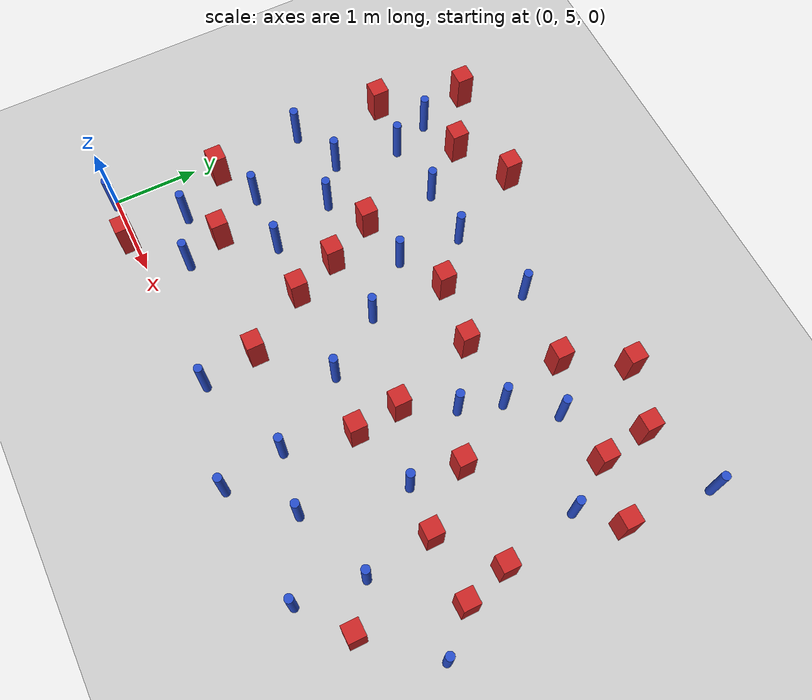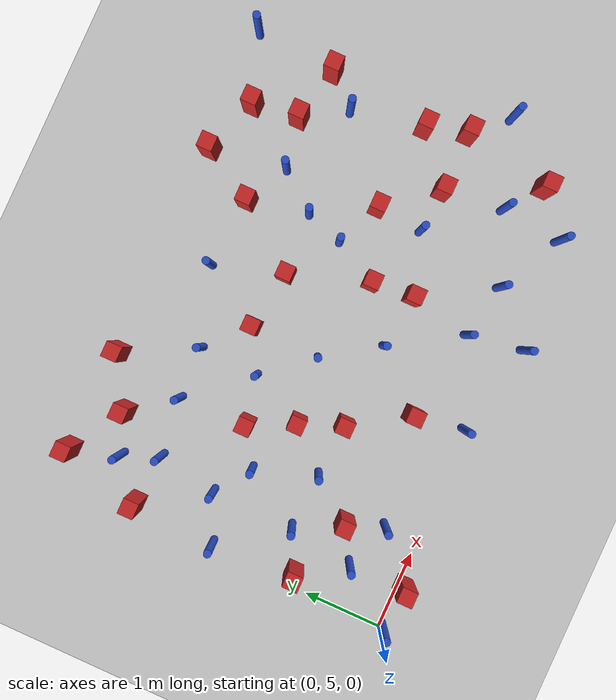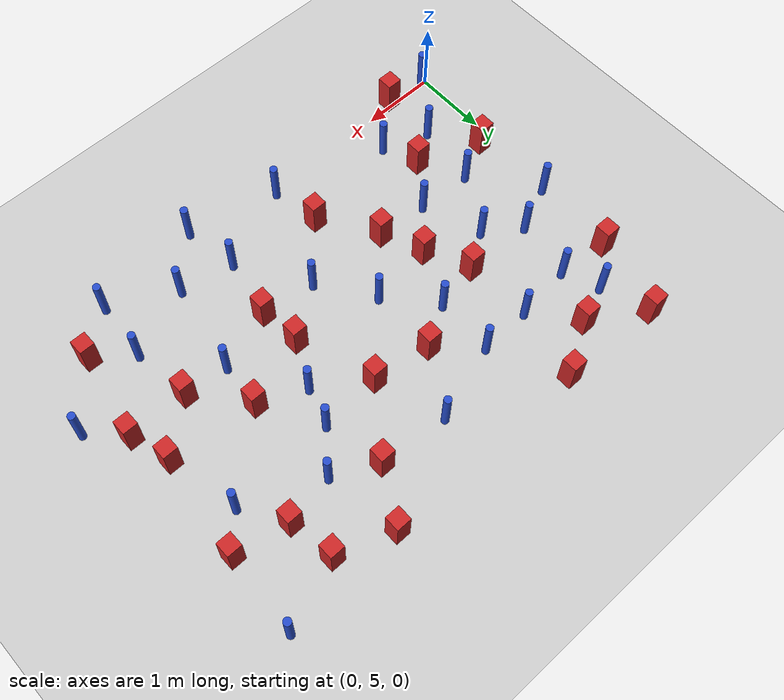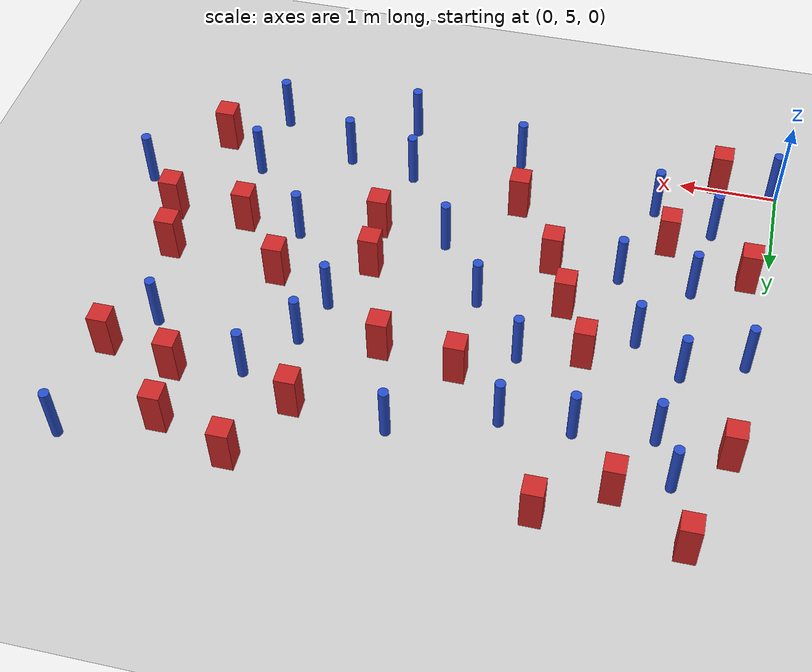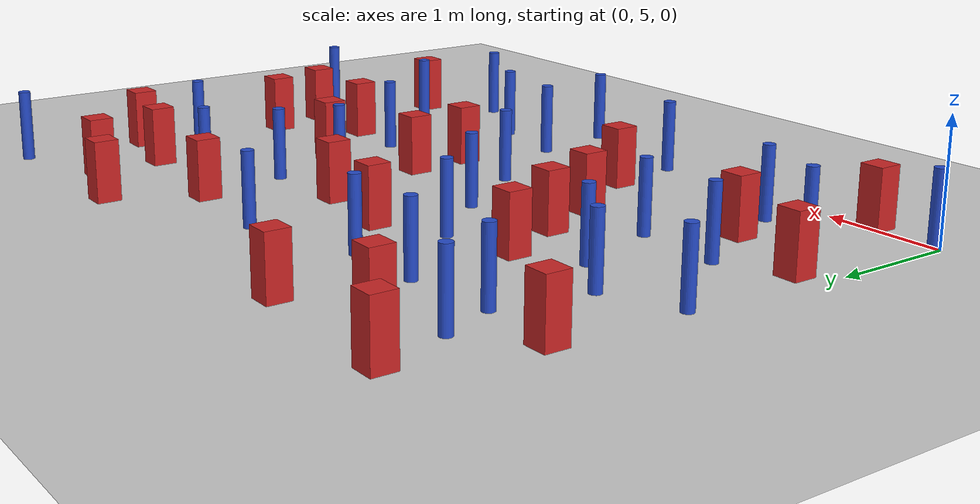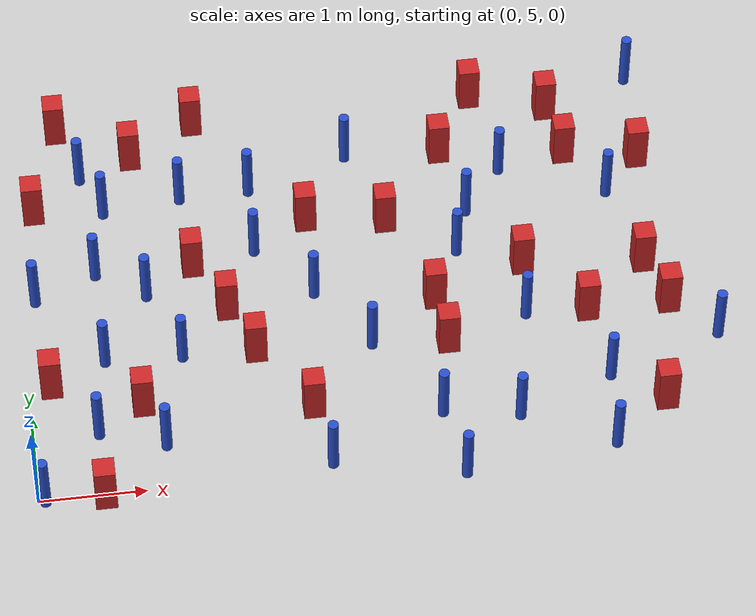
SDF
<sdf version="1.6">
 <world name="default">
  <model name="ground_plane">
   <static>1</static>
   <link name="link">
    <collision name="collision">
     <geometry><plane><normal>0 0 1</normal><size>100 100</size></plane></geometry>
     <surface><friction><ode><mu>100</mu><mu2>50</mu2></ode></friction></surface>
    </collision>
    <visual name="visual">
     <cast_shadows>0</cast_shadows>
     <geometry><plane><normal>0 0 1</normal><size>100 100</size></plane></geometry>
     <material>
      <ambient>1.0 1.0 1.0 1.0</ambient>
      <diffuse>0.8 0.8 0.8 1.0</diffuse>
      <specular>0.01 0.01 0.01 1.000000</specular>
     </material>
    </visual>
   </link>
  </model>
  <model name="square_post_obstacle0">
   <static>true</static>
   <pose>5.86539074183 5.41331573031 8.22691968438e-08 7.2212513382e-06 -7.54495500217e-07 2.29674213826e-05</pose>
   <link name="link">
    <pose>0 0 0.25 0 -0 0</pose>
    <inertial>
     <mass>100</mass>
     <inertia>
      <ixx>0.166667</ixx>
      <ixy>0</ixy>
      <ixz>0</ixz>
      <iyy>0.166667</iyy>
      <iyz>0</iyz>
      <izz>0.166667</izz>
     </inertia>
    </inertial>
    <collision name="collision"><geometry><box><size>.2 .2 .5</size></box></geometry></collision>
    <visual name="visual">
     <geometry><box><size>.2 .2 .5</size></box></geometry>
     <material>
      <script><name>Gazebo/Red</name><uri>file://media/materials/scripts/gazebo.material</uri></script>
     </material>
    </visual>
   </link>
  </model>
  <model name="square_post_obstacle1">
   <static>true</static>
   <pose>0.477158628215 9.43952176952 8.22691968438e-08 7.22125133819e-06 -7.54495500217e-07 2.29674213826e-05</pose>
   <link name="link">
    <pose>0 0 0.25 0 -0 0</pose>
    <inertial>
     <mass>100</mass>
     <inertia>
      <ixx>0.166667</ixx>
      <ixy>0</ixy>
      <ixz>0</ixz>
      <iyy>0.166667</iyy>
      <iyz>0</iyz>
      <izz>0.166667</izz>
     </inertia>
    </inertial>
    <collision name="collision"><geometry><box><size>.2 .2 .5</size></box></geometry></collision>
    <visual name="visual">
     <geometry><box><size>.2 .2 .5</size></box></geometry>
     <material>
      <script><name>Gazebo/Red</name><uri>file://media/materials/scripts/gazebo.material</uri></script>
     </material>
    </visual>
   </link>
  </model>
  <model name="square_post_obstacle16">
   <static>true</static>
   <pose>4.78652558701 7.19634134487 8.22691968438e-08 7.2212513382e-06 -7.54495500217e-07 2.29674213826e-05</pose>
   <link name="link">
    <pose>0 0 0.25 0 -0 0</pose>
    <inertial>
     <mass>100</mass>
     <inertia>
      <ixx>0.166667</ixx>
      <ixy>0</ixy>
      <ixz>0</ixz>
      <iyy>0.166667</iyy>
      <iyz>0</iyz>
      <izz>0.166667</izz>
     </inertia>
    </inertial>
    <collision name="collision"><geometry><box><size>.2 .2 .5</size></box></geometry></collision>
    <visual name="visual">
     <geometry><box><size>.2 .2 .5</size></box></geometry>
     <material>
      <script><name>Gazebo/Red</name><uri>file://media/materials/scripts/gazebo.material</uri></script>
     </material>
    </visual>
   </link>
  </model>
  <model name="square_post_obstacle19">
   <static>true</static>
   <pose>5.39842793259 8.55268821389 8.22691968438e-08 7.22125133819e-06 -7.54495500217e-07 2.29674213826e-05</pose>
   <link name="link">
    <pose>0 0 0.25 0 -0 0</pose>
    <inertial>
     <mass>100</mass>
     <inertia>
      <ixx>0.166667</ixx>
      <ixy>0</ixy>
      <ixz>0</ixz>
      <iyy>0.166667</iyy>
      <iyz>0</iyz>
      <izz>0.166667</izz>
     </inertia>
    </inertial>
    <collision name="collision"><geometry><box><size>.2 .2 .5</size></box></geometry></collision>
    <visual name="visual">
     <geometry><box><size>.2 .2 .5</size></box></geometry>
     <material>
      <script><name>Gazebo/Red</name><uri>file://media/materials/scripts/gazebo.material</uri></script>
     </material>
    </visual>
   </link>
  </model>
  <model name="square_post_obstacle20">
   <static>true</static>
   <pose>4.18817228938 8.71090653586 8.22691968438e-08 7.22125133819e-06 -7.54495500217e-07 2.29674213826e-05</pose>
   <link name="link">
    <pose>0 0 0.25 0 -0 0</pose>
    <inertial>
     <mass>100</mass>
     <inertia>
      <ixx>0.166667</ixx>
      <ixy>0</ixy>
      <ixz>0</ixz>
      <iyy>0.166667</iyy>
      <iyz>0</iyz>
      <izz>0.166667</izz>
     </inertia>
    </inertial>
    <collision name="collision"><geometry><box><size>.2 .2 .5</size></box></geometry></collision>
    <visual name="visual">
     <geometry><box><size>.2 .2 .5</size></box></geometry>
     <material>
      <script><name>Gazebo/Red</name><uri>file://media/materials/scripts/gazebo.material</uri></script>
     </material>
    </visual>
   </link>
  </model>
  <model name="pole_obstacle23">
   <static>true</static>
   <pose>1.45963767592 6.49354556979 2.88873142074e-08 -9.90536689852e-09 4.60219948989e-07 -1.2096599496e-07</pose>
   <link name="link">
    <pose>0 0 0.3 0 -0 0</pose>
    <inertial>
     <mass>1</mass>
     <inertia><ixx>0.145833</ixx><ixy>0</ixy><ixz>0</ixz><iyy>0.145833</iyy><iyz>0</iyz><izz>0.125</izz></inertia>
    </inertial>
    <collision name="collision">
     <geometry><cylinder><radius>0.05</radius><length>.6</length></cylinder></geometry>
    </collision>
    <visual name="visual">
     <geometry><cylinder><radius>0.05</radius><length>.6</length></cylinder></geometry>
     <material>
      <script><name>Gazebo/Blue</name><uri>file://media/materials/scripts/gazebo.material</uri></script>
     </material>
    </visual>
   </link>
  </model>
  <model name="pole_obstacle28">
   <static>true</static>
   <pose>2.77393802967 7.10350299203 2.88873142074e-08 -9.90536689859e-09 4.60219948989e-07 -1.20965994961e-07</pose>
   <link name="link">
    <pose>0 0 0.3 0 -0 0</pose>
    <inertial>
     <mass>1</mass>
     <inertia><ixx>0.145833</ixx><ixy>0</ixy><ixz>0</ixz><iyy>0.145833</iyy><iyz>0</iyz><izz>0.125</izz></inertia>
    </inertial>
    <collision name="collision">
     <geometry><cylinder><radius>0.05</radius><length>.6</length></cylinder></geometry>
    </collision>
    <visual name="visual">
     <geometry><cylinder><radius>0.05</radius><length>.6</length></cylinder></geometry>
     <material>
      <script><name>Gazebo/Blue</name><uri>file://media/materials/scripts/gazebo.material</uri></script>
     </material>
    </visual>
   </link>
  </model>
  <model name="pole_obstacle33">
   <static>true</static>
   <pose>2.28881350816 8.46453302383 2.88873142074e-08 -9.90536692318e-09 4.6021994893e-07 -1.20965994988e-07</pose>
   <link name="link">
    <pose>0 0 0.3 0 -0 0</pose>
    <inertial>
     <mass>1</mass>
     <inertia><ixx>0.145833</ixx><ixy>0</ixy><ixz>0</ixz><iyy>0.145833</iyy><iyz>0</iyz><izz>0.125</izz></inertia>
    </inertial>
    <collision name="collision">
     <geometry><cylinder><radius>0.05</radius><length>.6</length></cylinder></geometry>
    </collision>
    <visual name="visual">
     <geometry><cylinder><radius>0.05</radius><length>.6</length></cylinder></geometry>
     <material>
      <script><name>Gazebo/Blue</name><uri>file://media/materials/scripts/gazebo.material</uri></script>
     </material>
    </visual>
   </link>
  </model>
  <model name="square_post_obstacle37">
   <static>true</static>
   <pose>4.58737884672 9.3956600693 8.22691968438e-08 7.22125133819e-06 -7.54495500217e-07 2.29674213826e-05</pose>
   <link name="link">
    <pose>0 0 0.25 0 -0 0</pose>
    <inertial>
     <mass>100</mass>
     <inertia>
      <ixx>0.166667</ixx>
      <ixy>0</ixy>
      <ixz>0</ixz>
      <iyy>0.166667</iyy>
      <iyz>0</iyz>
      <izz>0.166667</izz>
     </inertia>
    </inertial>
    <collision name="collision"><geometry><box><size>.2 .2 .5</size></box></geometry></collision>
    <visual name="visual">
     <geometry><box><size>.2 .2 .5</size></box></geometry>
     <material>
      <script><name>Gazebo/Red</name><uri>file://media/materials/scripts/gazebo.material</uri></script>
     </material>
    </visual>
   </link>
  </model>
  <model name="pole_obstacle44">
   <static>true</static>
   <pose>2.26471390047 7.69749088098 2.88873142074e-08 -9.90536689859e-09 4.60219948989e-07 -1.20965994961e-07</pose>
   <link name="link">
    <pose>0 0 0.3 0 -0 0</pose>
    <inertial>
     <mass>1</mass>
     <inertia><ixx>0.145833</ixx><ixy>0</ixy><ixz>0</ixz><iyy>0.145833</iyy><iyz>0</iyz><izz>0.125</izz></inertia>
    </inertial>
    <collision name="collision">
     <geometry><cylinder><radius>0.05</radius><length>.6</length></cylinder></geometry>
    </collision>
    <visual name="visual">
     <geometry><cylinder><radius>0.05</radius><length>.6</length></cylinder></geometry>
     <material>
      <script><name>Gazebo/Blue</name><uri>file://media/materials/scripts/gazebo.material</uri></script>
     </material>
    </visual>
   </link>
  </model>
  <model name="square_post_obstacle48">
   <static>true</static>
   <pose>6.0896887062 6.55080383344 8.22691968438e-08 7.2212513382e-06 -7.54495500217e-07 2.29674213826e-05</pose>
   <link name="link">
    <pose>0 0 0.25 0 -0 0</pose>
    <inertial>
     <mass>100</mass>
     <inertia>
      <ixx>0.166667</ixx>
      <ixy>0</ixy>
      <ixz>0</ixz>
      <iyy>0.166667</iyy>
      <iyz>0</iyz>
      <izz>0.166667</izz>
     </inertia>
    </inertial>
    <collision name="collision"><geometry><box><size>.2 .2 .5</size></box></geometry></collision>
    <visual name="visual">
     <geometry><box><size>.2 .2 .5</size></box></geometry>
     <material>
      <script><name>Gazebo/Red</name><uri>file://media/materials/scripts/gazebo.material</uri></script>
     </material>
    </visual>
   </link>
  </model>
  <model name="square_post_obstacle55">
   <static>true</static>
   <pose>2.79258256145 8.00127265552 8.22691968438e-08 7.22125133819e-06 -7.54495500217e-07 2.29674213826e-05</pose>
   <link name="link">
    <pose>0 0 0.25 0 -0 0</pose>
    <inertial>
     <mass>100</mass>
     <inertia>
      <ixx>0.166667</ixx>
      <ixy>0</ixy>
      <ixz>0</ixz>
      <iyy>0.166667</iyy>
      <iyz>0</iyz>
      <izz>0.166667</izz>
     </inertia>
    </inertial>
    <collision name="collision"><geometry><box><size>.2 .2 .5</size></box></geometry></collision>
    <visual name="visual">
     <geometry><box><size>.2 .2 .5</size></box></geometry>
     <material>
      <script><name>Gazebo/Red</name><uri>file://media/materials/scripts/gazebo.material</uri></script>
     </material>
    </visual>
   </link>
  </model>
  <model name="pole_obstacle60">
   <static>true</static>
   <pose>4.73405541672 6.59473224566 2.88873142074e-08 -9.90536690842e-09 4.60219948965e-07 -1.20965994976e-07</pose>
   <link name="link">
    <pose>0 0 0.3 0 -0 0</pose>
    <inertial>
     <mass>1</mass>
     <inertia><ixx>0.145833</ixx><ixy>0</ixy><ixz>0</ixz><iyy>0.145833</iyy><iyz>0</iyz><izz>0.125</izz></inertia>
    </inertial>
    <collision name="collision">
     <geometry><cylinder><radius>0.05</radius><length>.6</length></cylinder></geometry>
    </collision>
    <visual name="visual">
     <geometry><cylinder><radius>0.05</radius><length>.6</length></cylinder></geometry>
     <material>
      <script><name>Gazebo/Blue</name><uri>file://media/materials/scripts/gazebo.material</uri></script>
     </material>
    </visual>
   </link>
  </model>
  <model name="square_post_obstacle65">
   <static>true</static>
   <pose>2.60907710599 5.73213100745 8.22691968438e-08 7.2212513382e-06 -7.54495500217e-07 2.29674213826e-05</pose>
   <link name="link">
    <pose>0 0 0.25 0 -0 0</pose>
    <inertial>
     <mass>100</mass>
     <inertia>
      <ixx>0.166667</ixx>
      <ixy>0</ixy>
      <ixz>0</ixz>
      <iyy>0.166667</iyy>
      <iyz>0</iyz>
      <izz>0.166667</izz>
     </inertia>
    </inertial>
    <collision name="collision"><geometry><box><size>.2 .2 .5</size></box></geometry></collision>
    <visual name="visual">
     <geometry><box><size>.2 .2 .5</size></box></geometry>
     <material>
      <script><name>Gazebo/Red</name><uri>file://media/materials/scripts/gazebo.material</uri></script>
     </material>
    </visual>
   </link>
  </model>
  <model name="square_post_obstacle66">
   <static>true</static>
   <pose>0.613485488091 4.94458646269 8.22691968438e-08 7.2212513382e-06 -7.54495500217e-07 2.29674213826e-05</pose>
   <link name="link">
    <pose>0 0 0.25 0 -0 0</pose>
    <inertial>
     <mass>100</mass>
     <inertia>
      <ixx>0.166667</ixx>
      <ixy>0</ixy>
      <ixz>0</ixz>
      <iyy>0.166667</iyy>
      <iyz>0</iyz>
      <izz>0.166667</izz>
     </inertia>
    </inertial>
    <collision name="collision"><geometry><box><size>.2 .2 .5</size></box></geometry></collision>
    <visual name="visual">
     <geometry><box><size>.2 .2 .5</size></box></geometry>
     <material>
      <script><name>Gazebo/Red</name><uri>file://media/materials/scripts/gazebo.material</uri></script>
     </material>
    </visual>
   </link>
  </model>
  <model name="pole_obstacle67">
   <static>true</static>
   <pose>5.33013302058 4.97884942234 2.88873142074e-08 -9.90536690842e-09 4.60219948965e-07 -1.20965994976e-07</pose>
   <link name="link">
    <pose>0 0 0.3 0 -0 0</pose>
    <inertial>
     <mass>1</mass>
     <inertia><ixx>0.145833</ixx><ixy>0</ixy><ixz>0</ixz><iyy>0.145833</iyy><iyz>0</iyz><izz>0.125</izz></inertia>
    </inertial>
    <collision name="collision">
     <geometry><cylinder><radius>0.05</radius><length>.6</length></cylinder></geometry>
    </collision>
    <visual name="visual">
     <geometry><cylinder><radius>0.05</radius><length>.6</length></cylinder></geometry>
     <material>
      <script><name>Gazebo/Blue</name><uri>file://media/materials/scripts/gazebo.material</uri></script>
     </material>
    </visual>
   </link>
  </model>
  <model name="pole_obstacle68">
   <static>true</static>
   <pose>0.862890356501 8.35498688069 2.88873142074e-08 -9.90536690779e-09 4.60219948967e-07 -1.20965994975e-07</pose>
   <link name="link">
    <pose>0 0 0.3 0 -0 0</pose>
    <inertial>
     <mass>1</mass>
     <inertia><ixx>0.145833</ixx><ixy>0</ixy><ixz>0</ixz><iyy>0.145833</iyy><iyz>0</iyz><izz>0.125</izz></inertia>
    </inertial>
    <collision name="collision">
     <geometry><cylinder><radius>0.05</radius><length>.6</length></cylinder></geometry>
    </collision>
    <visual name="visual">
     <geometry><cylinder><radius>0.05</radius><length>.6</length></cylinder></geometry>
     <material>
      <script><name>Gazebo/Blue</name><uri>file://media/materials/scripts/gazebo.material</uri></script>
     </material>
    </visual>
   </link>
  </model>
  <model name="square_post_obstacle75">
   <static>true</static>
   <pose>2.14707456046 6.45693934482 8.22691968438e-08 7.2212513382e-06 -7.54495500217e-07 2.29674213826e-05</pose>
   <link name="link">
    <pose>0 0 0.25 0 -0 0</pose>
    <inertial>
     <mass>100</mass>
     <inertia>
      <ixx>0.166667</ixx>
      <ixy>0</ixy>
      <ixz>0</ixz>
      <iyy>0.166667</iyy>
      <iyz>0</iyz>
      <izz>0.166667</izz>
     </inertia>
    </inertial>
    <collision name="collision"><geometry><box><size>.2 .2 .5</size></box></geometry></collision>
    <visual name="visual">
     <geometry><box><size>.2 .2 .5</size></box></geometry>
     <material>
      <script><name>Gazebo/Red</name><uri>file://media/materials/scripts/gazebo.material</uri></script>
     </material>
    </visual>
   </link>
  </model>
  <model name="square_post_obstacle80">
   <static>true</static>
   <pose>0.193927296909 8.41809540993 8.22691968438e-08 7.22125133819e-06 -7.54495500217e-07 2.29674213826e-05</pose>
   <link name="link">
    <pose>0 0 0.25 0 -0 0</pose>
    <inertial>
     <mass>100</mass>
     <inertia>
      <ixx>0.166667</ixx>
      <ixy>0</ixy>
      <ixz>0</ixz>
      <iyy>0.166667</iyy>
      <iyz>0</iyz>
      <izz>0.166667</izz>
     </inertia>
    </inertial>
    <collision name="collision"><geometry><box><size>.2 .2 .5</size></box></geometry></collision>
    <visual name="visual">
     <geometry><box><size>.2 .2 .5</size></box></geometry>
     <material>
      <script><name>Gazebo/Red</name><uri>file://media/materials/scripts/gazebo.material</uri></script>
     </material>
    </visual>
   </link>
  </model>
  <model name="pole_obstacle87">
   <static>true</static>
   <pose>3.24281417933 6.41800187507 2.88873142074e-08 -9.90536689859e-09 4.60219948989e-07 -1.20965994961e-07</pose>
   <link name="link">
    <pose>0 0 0.3 0 -0 0</pose>
    <inertial>
     <mass>1</mass>
     <inertia><ixx>0.145833</ixx><ixy>0</ixy><ixz>0</ixz><iyy>0.145833</iyy><iyz>0</iyz><izz>0.125</izz></inertia>
    </inertial>
    <collision name="collision">
     <geometry><cylinder><radius>0.05</radius><length>.6</length></cylinder></geometry>
    </collision>
    <visual name="visual">
     <geometry><cylinder><radius>0.05</radius><length>.6</length></cylinder></geometry>
     <material>
      <script><name>Gazebo/Blue</name><uri>file://media/materials/scripts/gazebo.material</uri></script>
     </material>
    </visual>
   </link>
  </model>
  <model name="pole_obstacle92">
   <static>true</static>
   <pose>6.17791020732 9.45705245229 2.88873142074e-08 -9.9053668967e-09 4.60219948993e-07 -1.20965994957e-07</pose>
   <link name="link">
    <pose>0 0 0.3 0 -0 0</pose>
    <inertial>
     <mass>1</mass>
     <inertia><ixx>0.145833</ixx><ixy>0</ixy><ixz>0</ixz><iyy>0.145833</iyy><iyz>0</iyz><izz>0.125</izz></inertia>
    </inertial>
    <collision name="collision">
     <geometry><cylinder><radius>0.05</radius><length>.6</length></cylinder></geometry>
    </collision>
    <visual name="visual">
     <geometry><cylinder><radius>0.05</radius><length>.6</length></cylinder></geometry>
     <material>
      <script><name>Gazebo/Blue</name><uri>file://media/materials/scripts/gazebo.material</uri></script>
     </material>
    </visual>
   </link>
  </model>
  <model name="pole_obstacle95">
   <static>true</static>
   <pose>2.70929222649 5.07933669351 2.88873142074e-08 -9.90536689859e-09 4.60219948989e-07 -1.20965994961e-07</pose>
   <link name="link">
    <pose>0 0 0.3 0 -0 0</pose>
    <inertial>
     <mass>1</mass>
     <inertia><ixx>0.145833</ixx><ixy>0</ixy><ixz>0</ixz><iyy>0.145833</iyy><iyz>0</iyz><izz>0.125</izz></inertia>
    </inertial>
    <collision name="collision">
     <geometry><cylinder><radius>0.05</radius><length>.6</length></cylinder></geometry>
    </collision>
    <visual name="visual">
     <geometry><cylinder><radius>0.05</radius><length>.6</length></cylinder></geometry>
     <material>
      <script><name>Gazebo/Blue</name><uri>file://media/materials/scripts/gazebo.material</uri></script>
     </material>
    </visual>
   </link>
  </model>
  <model name="pole_obstacle96">
   <static>true</static>
   <pose>3.27341335919 8.78736928619 2.88873142074e-08 -9.90536692318e-09 4.6021994893e-07 -1.20965994988e-07</pose>
   <link name="link">
    <pose>0 0 0.3 0 -0 0</pose>
    <inertial>
     <mass>1</mass>
     <inertia><ixx>0.145833</ixx><ixy>0</ixy><ixz>0</ixz><iyy>0.145833</iyy><iyz>0</iyz><izz>0.125</izz></inertia>
    </inertial>
    <collision name="collision">
     <geometry><cylinder><radius>0.05</radius><length>.6</length></cylinder></geometry>
    </collision>
    <visual name="visual">
     <geometry><cylinder><radius>0.05</radius><length>.6</length></cylinder></geometry>
     <material>
      <script><name>Gazebo/Blue</name><uri>file://media/materials/scripts/gazebo.material</uri></script>
     </material>
    </visual>
   </link>
  </model>
  <model name="pole_obstacle102">
   <static>true</static>
   <pose>1.18890810782 7.26915221411 2.88873142074e-08 -9.90536689852e-09 4.60219948989e-07 -1.2096599496e-07</pose>
   <link name="link">
    <pose>0 0 0.3 0 -0 0</pose>
    <inertial>
     <mass>1</mass>
     <inertia><ixx>0.145833</ixx><ixy>0</ixy><ixz>0</ixz><iyy>0.145833</iyy><iyz>0</iyz><izz>0.125</izz></inertia>
    </inertial>
    <collision name="collision">
     <geometry><cylinder><radius>0.05</radius><length>.6</length></cylinder></geometry>
    </collision>
    <visual name="visual">
     <geometry><cylinder><radius>0.05</radius><length>.6</length></cylinder></geometry>
     <material>
      <script><name>Gazebo/Blue</name><uri>file://media/materials/scripts/gazebo.material</uri></script>
     </material>
    </visual>
   </link>
  </model>
  <model name="pole_obstacle108">
   <static>true</static>
   <pose>0.0660360742255 4.98084027787 2.88873142074e-08 -9.90536689856e-09 4.60219948989e-07 -1.20965994961e-07</pose>
   <link name="link">
    <pose>0 0 0.3 0 -0 0</pose>
    <inertial>
     <mass>1</mass>
     <inertia><ixx>0.145833</ixx><ixy>0</ixy><ixz>0</ixz><iyy>0.145833</iyy><iyz>0</iyz><izz>0.125</izz></inertia>
    </inertial>
    <collision name="collision">
     <geometry><cylinder><radius>0.05</radius><length>.6</length></cylinder></geometry>
    </collision>
    <visual name="visual">
     <geometry><cylinder><radius>0.05</radius><length>.6</length></cylinder></geometry>
     <material>
      <script><name>Gazebo/Blue</name><uri>file://media/materials/scripts/gazebo.material</uri></script>
     </material>
    </visual>
   </link>
  </model>
  <model name="pole_obstacle111">
   <static>true</static>
   <pose>3.90955947455 4.81346588161 2.88873142074e-08 -9.90536689859e-09 4.60219948989e-07 -1.20965994961e-07</pose>
   <link name="link">
    <pose>0 0 0.3 0 -0 0</pose>
    <inertial>
     <mass>1</mass>
     <inertia><ixx>0.145833</ixx><ixy>0</ixy><ixz>0</ixz><iyy>0.145833</iyy><iyz>0</iyz><izz>0.125</izz></inertia>
    </inertial>
    <collision name="collision">
     <geometry><cylinder><radius>0.05</radius><length>.6</length></cylinder></geometry>
    </collision>
    <visual name="visual">
     <geometry><cylinder><radius>0.05</radius><length>.6</length></cylinder></geometry>
     <material>
      <script><name>Gazebo/Blue</name><uri>file://media/materials/scripts/gazebo.material</uri></script>
     </material>
    </visual>
   </link>
  </model>
  <model name="square_post_obstacle99">
   <static>true</static>
   <pose>1.65509684832 7.56695087861 8.22691968438e-08 7.2212513382e-06 -7.54495500217e-07 2.29674213826e-05</pose>
   <link name="link">
    <pose>0 0 0.25 0 -0 0</pose>
    <inertial>
     <mass>100</mass>
     <inertia>
      <ixx>0.166667</ixx>
      <ixy>0</ixy>
      <ixz>0</ixz>
      <iyy>0.166667</iyy>
      <iyz>0</iyz>
      <izz>0.166667</izz>
     </inertia>
    </inertial>
    <collision name="collision"><geometry><box><size>.2 .2 .5</size></box></geometry></collision>
    <visual name="visual">
     <geometry><box><size>.2 .2 .5</size></box></geometry>
     <material>
      <script><name>Gazebo/Red</name><uri>file://media/materials/scripts/gazebo.material</uri></script>
     </material>
    </visual>
   </link>
  </model>
  <model name="square_post_obstacle111">
   <static>true</static>
   <pose>3.55306418981 7.89015435753 8.22691968438e-08 7.2212513382e-06 -7.54495500217e-07 2.29674213826e-05</pose>
   <link name="link">
    <pose>0 0 0.25 0 -0 0</pose>
    <inertial>
     <mass>100</mass>
     <inertia>
      <ixx>0.166667</ixx>
      <ixy>0</ixy>
      <ixz>0</ixz>
      <iyy>0.166667</iyy>
      <iyz>0</iyz>
      <izz>0.166667</izz>
     </inertia>
    </inertial>
    <collision name="collision"><geometry><box><size>.2 .2 .5</size></box></geometry></collision>
    <visual name="visual">
     <geometry><box><size>.2 .2 .5</size></box></geometry>
     <material>
      <script><name>Gazebo/Red</name><uri>file://media/materials/scripts/gazebo.material</uri></script>
     </material>
    </visual>
   </link>
  </model>
  <model name="square_post_obstacle112">
   <static>true</static>
   <pose>1.17730572542 9.00479960348 8.22691968438e-08 7.22125133819e-06 -7.54495500217e-07 2.29674213826e-05</pose>
   <link name="link">
    <pose>0 0 0.25 0 -0 0</pose>
    <inertial>
     <mass>100</mass>
     <inertia>
      <ixx>0.166667</ixx>
      <ixy>0</ixy>
      <ixz>0</ixz>
      <iyy>0.166667</iyy>
      <iyz>0</iyz>
      <izz>0.166667</izz>
     </inertia>
    </inertial>
    <collision name="collision"><geometry><box><size>.2 .2 .5</size></box></geometry></collision>
    <visual name="visual">
     <geometry><box><size>.2 .2 .5</size></box></geometry>
     <material>
      <script><name>Gazebo/Red</name><uri>file://media/materials/scripts/gazebo.material</uri></script>
     </material>
    </visual>
   </link>
  </model>
  <model name="pole_obstacle126">
   <static>true</static>
   <pose>0.670344748755 8.81796477273 2.88873142074e-08 -9.90536690779e-09 4.60219948967e-07 -1.20965994975e-07</pose>
   <link name="link">
    <pose>0 0 0.3 0 -0 0</pose>
    <inertial>
     <mass>1</mass>
     <inertia><ixx>0.145833</ixx><ixy>0</ixy><ixz>0</ixz><iyy>0.145833</iyy><iyz>0</iyz><izz>0.125</izz></inertia>
    </inertial>
    <collision name="collision">
     <geometry><cylinder><radius>0.05</radius><length>.6</length></cylinder></geometry>
    </collision>
    <visual name="visual">
     <geometry><cylinder><radius>0.05</radius><length>.6</length></cylinder></geometry>
     <material>
      <script><name>Gazebo/Blue</name><uri>file://media/materials/scripts/gazebo.material</uri></script>
     </material>
    </visual>
   </link>
  </model>
  <model name="pole_obstacle127">
   <static>true</static>
   <pose>4.74740130887 8.42990722322 2.88873142074e-08 -9.9053668967e-09 4.60219948993e-07 -1.20965994957e-07</pose>
   <link name="link">
    <pose>0 0 0.3 0 -0 0</pose>
    <inertial>
     <mass>1</mass>
     <inertia><ixx>0.145833</ixx><ixy>0</ixy><ixz>0</ixz><iyy>0.145833</iyy><iyz>0</iyz><izz>0.125</izz></inertia>
    </inertial>
    <collision name="collision">
     <geometry><cylinder><radius>0.05</radius><length>.6</length></cylinder></geometry>
    </collision>
    <visual name="visual">
     <geometry><cylinder><radius>0.05</radius><length>.6</length></cylinder></geometry>
     <material>
      <script><name>Gazebo/Blue</name><uri>file://media/materials/scripts/gazebo.material</uri></script>
     </material>
    </visual>
   </link>
  </model>
  <model name="pole_obstacle130">
   <static>true</static>
   <pose>4.19286882459 7.4511030062 2.88873142074e-08 -9.90536690842e-09 4.60219948965e-07 -1.20965994976e-07</pose>
   <link name="link">
    <pose>0 0 0.3 0 -0 0</pose>
    <inertial>
     <mass>1</mass>
     <inertia><ixx>0.145833</ixx><ixy>0</ixy><ixz>0</ixz><iyy>0.145833</iyy><iyz>0</iyz><izz>0.125</izz></inertia>
    </inertial>
    <collision name="collision">
     <geometry><cylinder><radius>0.05</radius><length>.6</length></cylinder></geometry>
    </collision>
    <visual name="visual">
     <geometry><cylinder><radius>0.05</radius><length>.6</length></cylinder></geometry>
     <material>
      <script><name>Gazebo/Blue</name><uri>file://media/materials/scripts/gazebo.material</uri></script>
     </material>
    </visual>
   </link>
  </model>
  <model name="pole_obstacle137">
   <static>true</static>
   <pose>0.73391590364 6.52444964855 2.88873142074e-08 -9.90536689661e-09 4.60219948993e-07 -1.20965994957e-07</pose>
   <link name="link">
    <pose>0 0 0.3 0 -0 0</pose>
    <inertial>
     <mass>1</mass>
     <inertia><ixx>0.145833</ixx><ixy>0</ixy><ixz>0</ixz><iyy>0.145833</iyy><iyz>0</iyz><izz>0.125</izz></inertia>
    </inertial>
    <collision name="collision">
     <geometry><cylinder><radius>0.05</radius><length>.6</length></cylinder></geometry>
    </collision>
    <visual name="visual">
     <geometry><cylinder><radius>0.05</radius><length>.6</length></cylinder></geometry>
     <material>
      <script><name>Gazebo/Blue</name><uri>file://media/materials/scripts/gazebo.material</uri></script>
     </material>
    </visual>
   </link>
  </model>
  <model name="square_post_obstacle124">
   <static>true</static>
   <pose>1.81633537042 9.38183773393 8.22691968438e-08 7.22125133819e-06 -7.54495500217e-07 2.29674213826e-05</pose>
   <link name="link">
    <pose>0 0 0.25 0 -0 0</pose>
    <inertial>
     <mass>100</mass>
     <inertia>
      <ixx>0.166667</ixx>
      <ixy>0</ixy>
      <ixz>0</ixz>
      <iyy>0.166667</iyy>
      <iyz>0</iyz>
      <izz>0.166667</izz>
     </inertia>
    </inertial>
    <collision name="collision"><geometry><box><size>.2 .2 .5</size></box></geometry></collision>
    <visual name="visual">
     <geometry><box><size>.2 .2 .5</size></box></geometry>
     <material>
      <script><name>Gazebo/Red</name><uri>file://media/materials/scripts/gazebo.material</uri></script>
     </material>
    </visual>
   </link>
  </model>
  <model name="square_post_obstacle128">
   <static>true</static>
   <pose>5.9354060612 7.07889199849 8.22691968438e-08 7.2212513382e-06 -7.54495500217e-07 2.29674213826e-05</pose>
   <link name="link">
    <pose>0 0 0.25 0 -0 0</pose>
    <inertial>
     <mass>100</mass>
     <inertia>
      <ixx>0.166667</ixx>
      <ixy>0</ixy>
      <ixz>0</ixz>
      <iyy>0.166667</iyy>
      <iyz>0</iyz>
      <izz>0.166667</izz>
     </inertia>
    </inertial>
    <collision name="collision"><geometry><box><size>.2 .2 .5</size></box></geometry></collision>
    <visual name="visual">
     <geometry><box><size>.2 .2 .5</size></box></geometry>
     <material>
      <script><name>Gazebo/Red</name><uri>file://media/materials/scripts/gazebo.material</uri></script>
     </material>
    </visual>
   </link>
  </model>
  <model name="square_post_obstacle136">
   <static>true</static>
   <pose>5.31100243309 6.55364004816 8.22691968438e-08 7.2212513382e-06 -7.54495500217e-07 2.29674213826e-05</pose>
   <link name="link">
    <pose>0 0 0.25 0 -0 0</pose>
    <inertial>
     <mass>100</mass>
     <inertia>
      <ixx>0.166667</ixx>
      <ixy>0</ixy>
      <ixz>0</ixz>
      <iyy>0.166667</iyy>
      <iyz>0</iyz>
      <izz>0.166667</izz>
     </inertia>
    </inertial>
    <collision name="collision"><geometry><box><size>.2 .2 .5</size></box></geometry></collision>
    <visual name="visual">
     <geometry><box><size>.2 .2 .5</size></box></geometry>
     <material>
      <script><name>Gazebo/Red</name><uri>file://media/materials/scripts/gazebo.material</uri></script>
     </material>
    </visual>
   </link>
  </model>
  <model name="pole_obstacle156">
   <static>true</static>
   <pose>1.21736423848 5.47806848409 2.88873142074e-08 -9.90536689852e-09 4.60219948989e-07 -1.2096599496e-07</pose>
   <link name="link">
    <pose>0 0 0.3 0 -0 0</pose>
    <inertial>
     <mass>1</mass>
     <inertia><ixx>0.145833</ixx><ixy>0</ixy><ixz>0</ixz><iyy>0.145833</iyy><iyz>0</iyz><izz>0.125</izz></inertia>
    </inertial>
    <collision name="collision">
     <geometry><cylinder><radius>0.05</radius><length>.6</length></cylinder></geometry>
    </collision>
    <visual name="visual">
     <geometry><cylinder><radius>0.05</radius><length>.6</length></cylinder></geometry>
     <material>
      <script><name>Gazebo/Blue</name><uri>file://media/materials/scripts/gazebo.material</uri></script>
     </material>
    </visual>
   </link>
  </model>
  <model name="square_post_obstacle152">
   <static>true</static>
   <pose>5.31038555979 9.14428857342 8.22691968438e-08 7.22125133819e-06 -7.54495500217e-07 2.29674213826e-05</pose>
   <link name="link">
    <pose>0 0 0.25 0 -0 0</pose>
    <inertial>
     <mass>100</mass>
     <inertia>
      <ixx>0.166667</ixx>
      <ixy>0</ixy>
      <ixz>0</ixz>
      <iyy>0.166667</iyy>
      <iyz>0</iyz>
      <izz>0.166667</izz>
     </inertia>
    </inertial>
    <collision name="collision"><geometry><box><size>.2 .2 .5</size></box></geometry></collision>
    <visual name="visual">
     <geometry><box><size>.2 .2 .5</size></box></geometry>
     <material>
      <script><name>Gazebo/Red</name><uri>file://media/materials/scripts/gazebo.material</uri></script>
     </material>
    </visual>
   </link>
  </model>
  <model name="square_post_obstacle153">
   <static>true</static>
   <pose>6.10134361105 8.40473442453 8.22691968438e-08 7.22125133819e-06 -7.54495500217e-07 2.29674213826e-05</pose>
   <link name="link">
    <pose>0 0 0.25 0 -0 0</pose>
    <inertial>
     <mass>100</mass>
     <inertia>
      <ixx>0.166667</ixx>
      <ixy>0</ixy>
      <ixz>0</ixz>
      <iyy>0.166667</iyy>
      <iyz>0</iyz>
      <izz>0.166667</izz>
     </inertia>
    </inertial>
    <collision name="collision"><geometry><box><size>.2 .2 .5</size></box></geometry></collision>
    <visual name="visual">
     <geometry><box><size>.2 .2 .5</size></box></geometry>
     <material>
      <script><name>Gazebo/Red</name><uri>file://media/materials/scripts/gazebo.material</uri></script>
     </material>
    </visual>
   </link>
  </model>
  <model name="pole_obstacle167">
   <static>true</static>
   <pose>5.40708604625 5.7664301858 2.88873142074e-08 -9.90536690842e-09 4.60219948965e-07 -1.20965994976e-07</pose>
   <link name="link">
    <pose>0 0 0.3 0 -0 0</pose>
    <inertial>
     <mass>1</mass>
     <inertia><ixx>0.145833</ixx><ixy>0</ixy><ixz>0</ixz><iyy>0.145833</iyy><iyz>0</iyz><izz>0.125</izz></inertia>
    </inertial>
    <collision name="collision">
     <geometry><cylinder><radius>0.05</radius><length>.6</length></cylinder></geometry>
    </collision>
    <visual name="visual">
     <geometry><cylinder><radius>0.05</radius><length>.6</length></cylinder></geometry>
     <material>
      <script><name>Gazebo/Blue</name><uri>file://media/materials/scripts/gazebo.material</uri></script>
     </material>
    </visual>
   </link>
  </model>
  <model name="pole_obstacle169">
   <static>true</static>
   <pose>1.61406881342 8.44279137921 2.88873142074e-08 -9.90536690474e-09 4.60219948974e-07 -1.2096599497e-07</pose>
   <link name="link">
    <pose>0 0 0.3 0 -0 0</pose>
    <inertial>
     <mass>1</mass>
     <inertia><ixx>0.145833</ixx><ixy>0</ixy><ixz>0</ixz><iyy>0.145833</iyy><iyz>0</iyz><izz>0.125</izz></inertia>
    </inertial>
    <collision name="collision">
     <geometry><cylinder><radius>0.05</radius><length>.6</length></cylinder></geometry>
    </collision>
    <visual name="visual">
     <geometry><cylinder><radius>0.05</radius><length>.6</length></cylinder></geometry>
     <material>
      <script><name>Gazebo/Blue</name><uri>file://media/materials/scripts/gazebo.material</uri></script>
     </material>
    </visual>
   </link>
  </model>
  <model name="pole_obstacle175">
   <static>true</static>
   <pose>0.726187845291 7.58816278515 2.88873142074e-08 -9.90536689661e-09 4.60219948993e-07 -1.20965994957e-07</pose>
   <link name="link">
    <pose>0 0 0.3 0 -0 0</pose>
    <inertial>
     <mass>1</mass>
     <inertia><ixx>0.145833</ixx><ixy>0</ixy><ixz>0</ixz><iyy>0.145833</iyy><iyz>0</iyz><izz>0.125</izz></inertia>
    </inertial>
    <collision name="collision">
     <geometry><cylinder><radius>0.05</radius><length>.6</length></cylinder></geometry>
    </collision>
    <visual name="visual">
     <geometry><cylinder><radius>0.05</radius><length>.6</length></cylinder></geometry>
     <material>
      <script><name>Gazebo/Blue</name><uri>file://media/materials/scripts/gazebo.material</uri></script>
     </material>
    </visual>
   </link>
  </model>
  <model name="pole_obstacle178">
   <static>true</static>
   <pose>4.35207429254 7.93949776647 2.88873142074e-08 -9.90536690842e-09 4.60219948965e-07 -1.20965994976e-07</pose>
   <link name="link">
    <pose>0 0 0.3 0 -0 0</pose>
    <inertial>
     <mass>1</mass>
     <inertia><ixx>0.145833</ixx><ixy>0</ixy><ixz>0</ixz><iyy>0.145833</iyy><iyz>0</iyz><izz>0.125</izz></inertia>
    </inertial>
    <collision name="collision">
     <geometry><cylinder><radius>0.05</radius><length>.6</length></cylinder></geometry>
    </collision>
    <visual name="visual">
     <geometry><cylinder><radius>0.05</radius><length>.6</length></cylinder></geometry>
     <material>
      <script><name>Gazebo/Blue</name><uri>file://media/materials/scripts/gazebo.material</uri></script>
     </material>
    </visual>
   </link>
  </model>
  <model name="pole_obstacle185">
   <static>true</static>
   <pose>3.79149326974 5.53703129109 2.88873142074e-08 -9.90536689859e-09 4.60219948989e-07 -1.20965994961e-07</pose>
   <link name="link">
    <pose>0 0 0.3 0 -0 0</pose>
    <inertial>
     <mass>1</mass>
     <inertia><ixx>0.145833</ixx><ixy>0</ixy><ixz>0</ixz><iyy>0.145833</iyy><iyz>0</iyz><izz>0.125</izz></inertia>
    </inertial>
    <collision name="collision">
     <geometry><cylinder><radius>0.05</radius><length>.6</length></cylinder></geometry>
    </collision>
    <visual name="visual">
     <geometry><cylinder><radius>0.05</radius><length>.6</length></cylinder></geometry>
     <material>
      <script><name>Gazebo/Blue</name><uri>file://media/materials/scripts/gazebo.material</uri></script>
     </material>
    </visual>
   </link>
  </model>
  <model name="pole_obstacle187">
   <static>true</static>
   <pose>4.49936477962 5.4110488639 2.88873142074e-08 -9.90536690842e-09 4.60219948965e-07 -1.20965994976e-07</pose>
   <link name="link">
    <pose>0 0 0.3 0 -0 0</pose>
    <inertial>
     <mass>1</mass>
     <inertia><ixx>0.145833</ixx><ixy>0</ixy><ixz>0</ixz><iyy>0.145833</iyy><iyz>0</iyz><izz>0.125</izz></inertia>
    </inertial>
    <collision name="collision">
     <geometry><cylinder><radius>0.05</radius><length>.6</length></cylinder></geometry>
    </collision>
    <visual name="visual">
     <geometry><cylinder><radius>0.05</radius><length>.6</length></cylinder></geometry>
     <material>
      <script><name>Gazebo/Blue</name><uri>file://media/materials/scripts/gazebo.material</uri></script>
     </material>
    </visual>
   </link>
  </model>
  <model name="square_post_obstacle178">
   <static>true</static>
   <pose>3.95153599004 6.33755580232 8.22691968438e-08 7.2212513382e-06 -7.54495500217e-07 2.29674213826e-05</pose>
   <link name="link">
    <pose>0 0 0.25 0 -0 0</pose>
    <inertial>
     <mass>100</mass>
     <inertia>
      <ixx>0.166667</ixx>
      <ixy>0</ixy>
      <ixz>0</ixz>
      <iyy>0.166667</iyy>
      <iyz>0</iyz>
      <izz>0.166667</izz>
     </inertia>
    </inertial>
    <collision name="collision"><geometry><box><size>.2 .2 .5</size></box></geometry></collision>
    <visual name="visual">
     <geometry><box><size>.2 .2 .5</size></box></geometry>
     <material>
      <script><name>Gazebo/Red</name><uri>file://media/materials/scripts/gazebo.material</uri></script>
     </material>
    </visual>
   </link>
  </model>
  <model name="square_post_obstacle184">
   <static>true</static>
   <pose>0.213519349785 6.26812919752 8.22691968438e-08 7.2212513382e-06 -7.54495500217e-07 2.29674213826e-05</pose>
   <link name="link">
    <pose>0 0 0.25 0 -0 0</pose>
    <inertial>
     <mass>100</mass>
     <inertia>
      <ixx>0.166667</ixx>
      <ixy>0</ixy>
      <ixz>0</ixz>
      <iyy>0.166667</iyy>
      <iyz>0</iyz>
      <izz>0.166667</izz>
     </inertia>
    </inertial>
    <collision name="collision"><geometry><box><size>.2 .2 .5</size></box></geometry></collision>
    <visual name="visual">
     <geometry><box><size>.2 .2 .5</size></box></geometry>
     <material>
      <script><name>Gazebo/Red</name><uri>file://media/materials/scripts/gazebo.material</uri></script>
     </material>
    </visual>
   </link>
  </model>
  <model name="square_post_obstacle204">
   <static>true</static>
   <pose>3.90094929099 6.88231358514 8.22691968438e-08 7.2212513382e-06 -7.54495500217e-07 2.29674213826e-05</pose>
   <link name="link">
    <pose>0 0 0.25 0 -0 0</pose>
    <inertial>
     <mass>100</mass>
     <inertia>
      <ixx>0.166667</ixx>
      <ixy>0</ixy>
      <ixz>0</ixz>
      <iyy>0.166667</iyy>
      <iyz>0</iyz>
      <izz>0.166667</izz>
     </inertia>
    </inertial>
    <collision name="collision"><geometry><box><size>.2 .2 .5</size></box></geometry></collision>
    <visual name="visual">
     <geometry><box><size>.2 .2 .5</size></box></geometry>
     <material>
      <script><name>Gazebo/Red</name><uri>file://media/materials/scripts/gazebo.material</uri></script>
     </material>
    </visual>
   </link>
  </model>
  <model name="square_post_obstacle209">
   <static>true</static>
   <pose>1.93214425034 6.99807259169 8.22691968438e-08 7.2212513382e-06 -7.54495500217e-07 2.29674213826e-05</pose>
   <link name="link">
    <pose>0 0 0.25 0 -0 0</pose>
    <inertial>
     <mass>100</mass>
     <inertia>
      <ixx>0.166667</ixx>
      <ixy>0</ixy>
      <ixz>0</ixz>
      <iyy>0.166667</iyy>
      <iyz>0</iyz>
      <izz>0.166667</izz>
     </inertia>
    </inertial>
    <collision name="collision"><geometry><box><size>.2 .2 .5</size></box></geometry></collision>
    <visual name="visual">
     <geometry><box><size>.2 .2 .5</size></box></geometry>
     <material>
      <script><name>Gazebo/Red</name><uri>file://media/materials/scripts/gazebo.material</uri></script>
     </material>
    </visual>
   </link>
  </model>
  <model name="pole_obstacle189">
   <static>true</static>
   <pose>6.49514995724 6.13268380585 2.88873142074e-08 -9.90536690842e-09 4.60219948965e-07 -1.20965994976e-07</pose>
   <link name="link">
    <pose>0 0 0.3 0 -0 0</pose>
    <inertial>
     <mass>1</mass>
     <inertia><ixx>0.145833</ixx><ixy>0</ixy><ixz>0</ixz><iyy>0.145833</iyy><iyz>0</iyz><izz>0.125</izz></inertia>
    </inertial>
    <collision name="collision">
     <geometry><cylinder><radius>0.05</radius><length>.6</length></cylinder></geometry>
    </collision>
    <visual name="visual">
     <geometry><cylinder><radius>0.05</radius><length>.6</length></cylinder></geometry>
     <material>
      <script><name>Gazebo/Blue</name><uri>file://media/materials/scripts/gazebo.material</uri></script>
     </material>
    </visual>
   </link>
  </model>
  <model name="pole_obstacle190">
   <static>true</static>
   <pose>0.135365312062 7.33283866756 2.88873142074e-08 -9.90536689843e-09 4.60219948989e-07 -1.20965994962e-07</pose>
   <link name="link">
    <pose>0 0 0.3 0 -0 0</pose>
    <inertial>
     <mass>1</mass>
     <inertia><ixx>0.145833</ixx><ixy>0</ixy><ixz>0</ixz><iyy>0.145833</iyy><iyz>0</iyz><izz>0.125</izz></inertia>
    </inertial>
    <collision name="collision">
     <geometry><cylinder><radius>0.05</radius><length>.6</length></cylinder></geometry>
    </collision>
    <visual name="visual">
     <geometry><cylinder><radius>0.05</radius><length>.6</length></cylinder></geometry>
     <material>
      <script><name>Gazebo/Blue</name><uri>file://media/materials/scripts/gazebo.material</uri></script>
     </material>
    </visual>
   </link>
  </model>
  <model name="pole_obstacle200">
   <static>true</static>
   <pose>5.74276621503 8.00969036192 2.88873142074e-08 -9.90536690354e-09 4.60219948977e-07 -1.20965994967e-07</pose>
   <link name="link">
    <pose>0 0 0.3 0 -0 0</pose>
    <inertial>
     <mass>1</mass>
     <inertia><ixx>0.145833</ixx><ixy>0</ixy><ixz>0</ixz><iyy>0.145833</iyy><iyz>0</iyz><izz>0.125</izz></inertia>
    </inertial>
    <collision name="collision">
     <geometry><cylinder><radius>0.05</radius><length>.6</length></cylinder></geometry>
    </collision>
    <visual name="visual">
     <geometry><cylinder><radius>0.05</radius><length>.6</length></cylinder></geometry>
     <material>
      <script><name>Gazebo/Blue</name><uri>file://media/materials/scripts/gazebo.material</uri></script>
     </material>
    </visual>
   </link>
  </model>
  <model name="pole_obstacle211">
   <static>true</static>
   <pose>0.611143315729 5.68568532504 2.88873142074e-08 -9.90536689661e-09 4.60219948993e-07 -1.20965994957e-07</pose>
   <link name="link">
    <pose>0 0 0.3 0 -0 0</pose>
    <inertial>
     <mass>1</mass>
     <inertia><ixx>0.145833</ixx><ixy>0</ixy><ixz>0</ixz><iyy>0.145833</iyy><iyz>0</iyz><izz>0.125</izz></inertia>
    </inertial>
    <collision name="collision">
     <geometry><cylinder><radius>0.05</radius><length>.6</length></cylinder></geometry>
    </collision>
    <visual name="visual">
     <geometry><cylinder><radius>0.05</radius><length>.6</length></cylinder></geometry>
     <material>
      <script><name>Gazebo/Blue</name><uri>file://media/materials/scripts/gazebo.material</uri></script>
     </material>
    </visual>
   </link>
  </model>
  <model name="square_post_obstacle215">
   <static>true</static>
   <pose>1.04360003262 5.95213996466 8.22691968438e-08 7.2212513382e-06 -7.54495500217e-07 2.29674213826e-05</pose>
   <link name="link">
    <pose>0 0 0.25 0 -0 0</pose>
    <inertial>
     <mass>100</mass>
     <inertia>
      <ixx>0.166667</ixx>
      <ixy>0</ixy>
      <ixz>0</ixz>
      <iyy>0.166667</iyy>
      <iyz>0</iyz>
      <izz>0.166667</izz>
     </inertia>
    </inertial>
    <collision name="collision"><geometry><box><size>.2 .2 .5</size></box></geometry></collision>
    <visual name="visual">
     <geometry><box><size>.2 .2 .5</size></box></geometry>
     <material>
      <script><name>Gazebo/Red</name><uri>file://media/materials/scripts/gazebo.material</uri></script>
     </material>
    </visual>
   </link>
  </model>
 </world>
</sdf>
